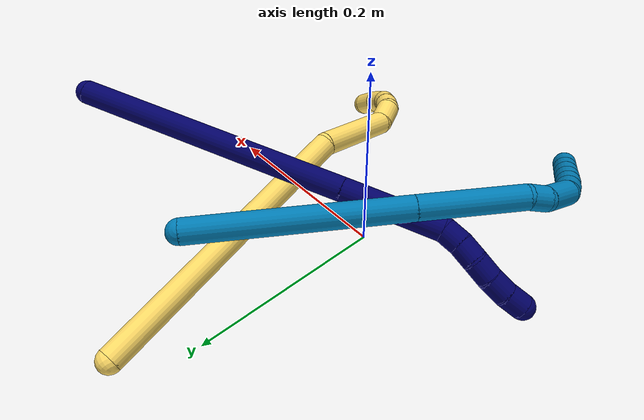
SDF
<sdf version="1.7">
 <world name="default">
  <model name="5">
   <static>0</static>
   <link name="5">
    <collision name="collision-cylinder-e_1_1_4">
     <pose>0.003242 -0.136029 0.056497 1.17714 0.022007 0.01469</pose>
     <geometry><cylinder><radius>0.0125</radius><length>0.294662</length></cylinder></geometry>
     <surface>
      <friction><ode><mu>1.16</mu><mu2>1.16</mu2><slip1>0</slip1><slip2>0</slip2></ode></friction>
      <contact><ode><kp>1e+06</kp><kd>1</kd><max_vel>0</max_vel><min_depth>0.001</min_depth></ode></contact>
     </surface>
    </collision>
    <visual name="visual-cylinder-e_1_1_4">
     <pose>0.003242 -0.136029 0.056497 1.17714 0.022007 0.01469</pose>
     <geometry><cylinder><radius>0.0125</radius><length>0.294662</length></cylinder></geometry>
     <material><ambient>1 0.858824 0.4 1</ambient></material>
    </visual>
    <collision name="collision-cylinder-e_2_4_5">
     <pose>0.022833 -0.311739 0.121716 1.35446 0.382576 0.308953</pose>
     <geometry><cylinder><radius>0.0125</radius><length>0.087588</length></cylinder></geometry>
     <surface>
      <friction><ode><mu>1.16</mu><mu2>1.16</mu2><slip1>0</slip1><slip2>0</slip2></ode></friction>
      <contact><ode><kp>1e+06</kp><kd>1</kd><max_vel>0</max_vel><min_depth>0.001</min_depth></ode></contact>
     </surface>
    </collision>
    <visual name="visual-cylinder-e_2_4_5">
     <pose>0.022833 -0.311739 0.121716 1.35446 0.382576 0.308953</pose>
     <geometry><cylinder><radius>0.0125</radius><length>0.087588</length></cylinder></geometry>
     <material><ambient>1 0.858824 0.4 1</ambient></material>
    </visual>
    <collision name="collision-cylinder-e_3_5_6">
     <pose>0.042066 -0.361591 0.139142 0.862842 0.212204 0.097976</pose>
     <geometry><cylinder><radius>0.0125</radius><length>0.02739</length></cylinder></geometry>
     <surface>
      <friction><ode><mu>1.16</mu><mu2>1.16</mu2><slip1>0</slip1><slip2>0</slip2></ode></friction>
      <contact><ode><kp>1e+06</kp><kd>1</kd><max_vel>0</max_vel><min_depth>0.001</min_depth></ode></contact>
     </surface>
    </collision>
    <visual name="visual-cylinder-e_3_5_6">
     <pose>0.042066 -0.361591 0.139142 0.862842 0.212204 0.097976</pose>
     <geometry><cylinder><radius>0.0125</radius><length>0.02739</length></cylinder></geometry>
     <material><ambient>1 0.858824 0.4 1</ambient></material>
    </visual>
    <collision name="collision-cylinder-e_4_6_7">
     <pose>0.050734 -0.375693 0.15559 0.469907 0.587633 0.144604</pose>
     <geometry><cylinder><radius>0.0125</radius><length>0.020865</length></cylinder></geometry>
     <surface>
      <friction><ode><mu>1.16</mu><mu2>1.16</mu2><slip1>0</slip1><slip2>0</slip2></ode></friction>
      <contact><ode><kp>1e+06</kp><kd>1</kd><max_vel>0</max_vel><min_depth>0.001</min_depth></ode></contact>
     </surface>
    </collision>
    <visual name="visual-cylinder-e_4_6_7">
     <pose>0.050734 -0.375693 0.15559 0.469907 0.587633 0.144604</pose>
     <geometry><cylinder><radius>0.0125</radius><length>0.020865</length></cylinder></geometry>
     <material><ambient>1 0.858824 0.4 1</ambient></material>
    </visual>
    <collision name="collision-cylinder-e_5_7_8">
     <pose>0.063814 -0.383076 0.171138 0.416234 0.70726 0.155595</pose>
     <geometry><cylinder><radius>0.0125</radius><length>0.022457</length></cylinder></geometry>
     <surface>
      <friction><ode><mu>1.16</mu><mu2>1.16</mu2><slip1>0</slip1><slip2>0</slip2></ode></friction>
      <contact><ode><kp>1e+06</kp><kd>1</kd><max_vel>0</max_vel><min_depth>0.001</min_depth></ode></contact>
     </surface>
    </collision>
    <visual name="visual-cylinder-e_5_7_8">
     <pose>0.063814 -0.383076 0.171138 0.416234 0.70726 0.155595</pose>
     <geometry><cylinder><radius>0.0125</radius><length>0.022457</length></cylinder></geometry>
     <material><ambient>1 0.858824 0.4 1</ambient></material>
    </visual>
    <collision name="collision-cylinder-e_6_8_9">
     <pose>0.079107 -0.385395 0.187669 -0.12896 0.737763 -0.049912</pose>
     <geometry><cylinder><radius>0.0125</radius><length>0.023778</length></cylinder></geometry>
     <surface>
      <friction><ode><mu>1.16</mu><mu2>1.16</mu2><slip1>0</slip1><slip2>0</slip2></ode></friction>
      <contact><ode><kp>1e+06</kp><kd>1</kd><max_vel>0</max_vel><min_depth>0.001</min_depth></ode></contact>
     </surface>
    </collision>
    <visual name="visual-cylinder-e_6_8_9">
     <pose>0.079107 -0.385395 0.187669 -0.12896 0.737763 -0.049912</pose>
     <geometry><cylinder><radius>0.0125</radius><length>0.023778</length></cylinder></geometry>
     <material><ambient>1 0.858824 0.4 1</ambient></material>
    </visual>
    <collision name="collision-cylinder-e_7_9_2">
     <pose>0.095212 -0.380977 0.204055 -0.405233 0.771488 -0.166465</pose>
     <geometry><cylinder><radius>0.0125</radius><length>0.02326</length></cylinder></geometry>
     <surface>
      <friction><ode><mu>1.16</mu><mu2>1.16</mu2><slip1>0</slip1><slip2>0</slip2></ode></friction>
      <contact><ode><kp>1e+06</kp><kd>1</kd><max_vel>0</max_vel><min_depth>0.001</min_depth></ode></contact>
     </surface>
    </collision>
    <visual name="visual-cylinder-e_7_9_2">
     <pose>0.095212 -0.380977 0.204055 -0.405233 0.771488 -0.166465</pose>
     <geometry><cylinder><radius>0.0125</radius><length>0.02326</length></cylinder></geometry>
     <material><ambient>1 0.858824 0.4 1</ambient></material>
    </visual>
    <collision name="collision-sphere-2">
     <pose>0.10332 -0.37769 0.211717 0 -0 0</pose>
     <geometry><sphere><radius>0.0125</radius></sphere></geometry>
     <surface>
      <friction><ode><mu>1.16</mu><mu2>1.16</mu2><slip1>0</slip1><slip2>0</slip2></ode></friction>
      <contact><ode><kp>1e+06</kp><kd>1</kd><max_vel>0</max_vel><min_depth>0.001</min_depth></ode></contact>
     </surface>
    </collision>
    <visual name="visual-sphere-2">
     <pose>0.10332 -0.37769 0.211717 0 -0 0</pose>
     <geometry><sphere><radius>0.0125</radius></sphere></geometry>
     <material><ambient>1 0.858824 0.4 1</ambient></material>
    </visual>
    <collision name="collision-sphere-9">
     <pose>0.087104 -0.384264 0.196393 0 -0 0</pose>
     <geometry><sphere><radius>0.0125</radius></sphere></geometry>
     <surface>
      <friction><ode><mu>1.16</mu><mu2>1.16</mu2><slip1>0</slip1><slip2>0</slip2></ode></friction>
      <contact><ode><kp>1e+06</kp><kd>1</kd><max_vel>0</max_vel><min_depth>0.001</min_depth></ode></contact>
     </surface>
    </collision>
    <visual name="visual-sphere-9">
     <pose>0.087104 -0.384264 0.196393 0 -0 0</pose>
     <geometry><sphere><radius>0.0125</radius></sphere></geometry>
     <material><ambient>1 0.858824 0.4 1</ambient></material>
    </visual>
    <collision name="collision-sphere-4">
     <pose>0.006484 -0.272058 0.112995 0 -0 0</pose>
     <geometry><sphere><radius>0.0125</radius></sphere></geometry>
     <surface>
      <friction><ode><mu>1.16</mu><mu2>1.16</mu2><slip1>0</slip1><slip2>0</slip2></ode></friction>
      <contact><ode><kp>1e+06</kp><kd>1</kd><max_vel>0</max_vel><min_depth>0.001</min_depth></ode></contact>
     </surface>
    </collision>
    <visual name="visual-sphere-4">
     <pose>0.006484 -0.272058 0.112995 0 -0 0</pose>
     <geometry><sphere><radius>0.0125</radius></sphere></geometry>
     <material><ambient>1 0.858824 0.4 1</ambient></material>
    </visual>
    <collision name="collision-sphere-1">
     <geometry><sphere><radius>0.0125</radius></sphere></geometry>
     <surface>
      <friction><ode><mu>1.16</mu><mu2>1.16</mu2><slip1>0</slip1><slip2>0</slip2></ode></friction>
      <contact><ode><kp>1e+06</kp><kd>1</kd><max_vel>0</max_vel><min_depth>0.001</min_depth></ode></contact>
     </surface>
    </collision>
    <visual name="visual-sphere-1">
     <geometry><sphere><radius>0.0125</radius></sphere></geometry>
     <material><ambient>1 0.858824 0.4 1</ambient></material>
    </visual>
    <collision name="collision-sphere-8">
     <pose>0.07111 -0.386527 0.178945 0 -0 0</pose>
     <geometry><sphere><radius>0.0125</radius></sphere></geometry>
     <surface>
      <friction><ode><mu>1.16</mu><mu2>1.16</mu2><slip1>0</slip1><slip2>0</slip2></ode></friction>
      <contact><ode><kp>1e+06</kp><kd>1</kd><max_vel>0</max_vel><min_depth>0.001</min_depth></ode></contact>
     </surface>
    </collision>
    <visual name="visual-sphere-8">
     <pose>0.07111 -0.386527 0.178945 0 -0 0</pose>
     <geometry><sphere><radius>0.0125</radius></sphere></geometry>
     <material><ambient>1 0.858824 0.4 1</ambient></material>
    </visual>
    <collision name="collision-sphere-5">
     <pose>0.039182 -0.35142 0.130436 0 -0 0</pose>
     <geometry><sphere><radius>0.0125</radius></sphere></geometry>
     <surface>
      <friction><ode><mu>1.16</mu><mu2>1.16</mu2><slip1>0</slip1><slip2>0</slip2></ode></friction>
      <contact><ode><kp>1e+06</kp><kd>1</kd><max_vel>0</max_vel><min_depth>0.001</min_depth></ode></contact>
     </surface>
    </collision>
    <visual name="visual-sphere-5">
     <pose>0.039182 -0.35142 0.130436 0 -0 0</pose>
     <geometry><sphere><radius>0.0125</radius></sphere></geometry>
     <material><ambient>1 0.858824 0.4 1</ambient></material>
    </visual>
    <collision name="collision-sphere-6">
     <pose>0.04495 -0.371761 0.147848 0 -0 0</pose>
     <geometry><sphere><radius>0.0125</radius></sphere></geometry>
     <surface>
      <friction><ode><mu>1.16</mu><mu2>1.16</mu2><slip1>0</slip1><slip2>0</slip2></ode></friction>
      <contact><ode><kp>1e+06</kp><kd>1</kd><max_vel>0</max_vel><min_depth>0.001</min_depth></ode></contact>
     </surface>
    </collision>
    <visual name="visual-sphere-6">
     <pose>0.04495 -0.371761 0.147848 0 -0 0</pose>
     <geometry><sphere><radius>0.0125</radius></sphere></geometry>
     <material><ambient>1 0.858824 0.4 1</ambient></material>
    </visual>
    <collision name="collision-sphere-7">
     <pose>0.056518 -0.379625 0.163331 0 -0 0</pose>
     <geometry><sphere><radius>0.0125</radius></sphere></geometry>
     <surface>
      <friction><ode><mu>1.16</mu><mu2>1.16</mu2><slip1>0</slip1><slip2>0</slip2></ode></friction>
      <contact><ode><kp>1e+06</kp><kd>1</kd><max_vel>0</max_vel><min_depth>0.001</min_depth></ode></contact>
     </surface>
    </collision>
    <visual name="visual-sphere-7">
     <pose>0.056518 -0.379625 0.163331 0 -0 0</pose>
     <geometry><sphere><radius>0.0125</radius></sphere></geometry>
     <material><ambient>1 0.858824 0.4 1</ambient></material>
    </visual>
    <inertial>
     <pose>0.021389 -0.223517 0.094836 0 -0 0</pose>
     <mass>0.5</mass>
     <inertia>
      <ixx>0.00226</ixx>
      <ixy>0</ixy>
      <ixz>0</ixz>
      <iyy>0.000869</iyy>
      <iyz>0</iyz>
      <izz>0.001977</izz>
     </inertia>
    </inertial>
   </link>
   <pose>0.032457 0.269206 0.01149 -0.648333 1.31608 -0.870863</pose>
  </model>
  <model name="7">
   <static>0</static>
   <link name="7">
    <collision name="collision-cylinder-e_1_1_4">
     <pose>-0.118914 -0.064873 -0.059321 2.31152 -0.934216 -1.70541</pose>
     <geometry><cylinder><radius>0.0125</radius><length>0.295756</length></cylinder></geometry>
     <surface>
      <friction><ode><mu>1.16</mu><mu2>1.16</mu2><slip1>0</slip1><slip2>0</slip2></ode></friction>
      <contact><ode><kp>1e+06</kp><kd>1</kd><max_vel>0</max_vel><min_depth>0.001</min_depth></ode></contact>
     </surface>
    </collision>
    <visual name="visual-cylinder-e_1_1_4">
     <pose>-0.118914 -0.064873 -0.059321 2.31152 -0.934216 -1.70541</pose>
     <geometry><cylinder><radius>0.0125</radius><length>0.295756</length></cylinder></geometry>
     <material><ambient>0.003922 0 0.403922 1</ambient></material>
    </visual>
    <collision name="collision-cylinder-e_2_4_5">
     <pose>-0.279499 -0.151109 -0.139542 2.34524 -0.948629 -1.76877</pose>
     <geometry><cylinder><radius>0.0125</radius><length>0.102562</length></cylinder></geometry>
     <surface>
      <friction><ode><mu>1.16</mu><mu2>1.16</mu2><slip1>0</slip1><slip2>0</slip2></ode></friction>
      <contact><ode><kp>1e+06</kp><kd>1</kd><max_vel>0</max_vel><min_depth>0.001</min_depth></ode></contact>
     </surface>
    </collision>
    <visual name="visual-cylinder-e_2_4_5">
     <pose>-0.279499 -0.151109 -0.139542 2.34524 -0.948629 -1.76877</pose>
     <geometry><cylinder><radius>0.0125</radius><length>0.102562</length></cylinder></geometry>
     <material><ambient>0.003922 0 0.403922 1</ambient></material>
    </visual>
    <collision name="collision-cylinder-e_3_5_6">
     <pose>-0.330724 -0.175266 -0.161765 2.01326 -1.25789 -1.70986</pose>
     <geometry><cylinder><radius>0.0125</radius><length>0.020081</length></cylinder></geometry>
     <surface>
      <friction><ode><mu>1.16</mu><mu2>1.16</mu2><slip1>0</slip1><slip2>0</slip2></ode></friction>
      <contact><ode><kp>1e+06</kp><kd>1</kd><max_vel>0</max_vel><min_depth>0.001</min_depth></ode></contact>
     </surface>
    </collision>
    <visual name="visual-cylinder-e_3_5_6">
     <pose>-0.330724 -0.175266 -0.161765 2.01326 -1.25789 -1.70986</pose>
     <geometry><cylinder><radius>0.0125</radius><length>0.020081</length></cylinder></geometry>
     <material><ambient>0.003922 0 0.403922 1</ambient></material>
    </visual>
    <collision name="collision-cylinder-e_4_6_7">
     <pose>-0.350134 -0.180532 -0.162753 1.43576 -1.32274 -1.19395</pose>
     <geometry><cylinder><radius>0.0125</radius><length>0.020336</length></cylinder></geometry>
     <surface>
      <friction><ode><mu>1.16</mu><mu2>1.16</mu2><slip1>0</slip1><slip2>0</slip2></ode></friction>
      <contact><ode><kp>1e+06</kp><kd>1</kd><max_vel>0</max_vel><min_depth>0.001</min_depth></ode></contact>
     </surface>
    </collision>
    <visual name="visual-cylinder-e_4_6_7">
     <pose>-0.350134 -0.180532 -0.162753 1.43576 -1.32274 -1.19395</pose>
     <geometry><cylinder><radius>0.0125</radius><length>0.020336</length></cylinder></geometry>
     <material><ambient>0.003922 0 0.403922 1</ambient></material>
    </visual>
    <collision name="collision-cylinder-e_5_7_8">
     <pose>-0.369974 -0.183609 -0.163152 2.45474 -1.47582 -2.3922</pose>
     <geometry><cylinder><radius>0.0125</radius><length>0.020056</length></cylinder></geometry>
     <surface>
      <friction><ode><mu>1.16</mu><mu2>1.16</mu2><slip1>0</slip1><slip2>0</slip2></ode></friction>
      <contact><ode><kp>1e+06</kp><kd>1</kd><max_vel>0</max_vel><min_depth>0.001</min_depth></ode></contact>
     </surface>
    </collision>
    <visual name="visual-cylinder-e_5_7_8">
     <pose>-0.369974 -0.183609 -0.163152 2.45474 -1.47582 -2.3922</pose>
     <geometry><cylinder><radius>0.0125</radius><length>0.020056</length></cylinder></geometry>
     <material><ambient>0.003922 0 0.403922 1</ambient></material>
    </visual>
    <collision name="collision-cylinder-e_6_8_9">
     <pose>-0.390312 -0.184447 -0.165951 3.0285 -1.3728 -3.00363</pose>
     <geometry><cylinder><radius>0.0125</radius><length>0.021122</length></cylinder></geometry>
     <surface>
      <friction><ode><mu>1.16</mu><mu2>1.16</mu2><slip1>0</slip1><slip2>0</slip2></ode></friction>
      <contact><ode><kp>1e+06</kp><kd>1</kd><max_vel>0</max_vel><min_depth>0.001</min_depth></ode></contact>
     </surface>
    </collision>
    <visual name="visual-cylinder-e_6_8_9">
     <pose>-0.390312 -0.184447 -0.165951 3.0285 -1.3728 -3.00363</pose>
     <geometry><cylinder><radius>0.0125</radius><length>0.021122</length></cylinder></geometry>
     <material><ambient>0.003922 0 0.403922 1</ambient></material>
    </visual>
    <collision name="collision-cylinder-e_7_9_2">
     <pose>-0.410104 -0.184925 -0.171441 3.0705 -1.22174 -3.04011</pose>
     <geometry><cylinder><radius>0.0125</radius><length>0.020086</length></cylinder></geometry>
     <surface>
      <friction><ode><mu>1.16</mu><mu2>1.16</mu2><slip1>0</slip1><slip2>0</slip2></ode></friction>
      <contact><ode><kp>1e+06</kp><kd>1</kd><max_vel>0</max_vel><min_depth>0.001</min_depth></ode></contact>
     </surface>
    </collision>
    <visual name="visual-cylinder-e_7_9_2">
     <pose>-0.410104 -0.184925 -0.171441 3.0705 -1.22174 -3.04011</pose>
     <geometry><cylinder><radius>0.0125</radius><length>0.020086</length></cylinder></geometry>
     <material><ambient>0.003922 0 0.403922 1</ambient></material>
    </visual>
    <collision name="collision-sphere-2">
     <pose>-0.419541 -0.185169 -0.174868 0 -0 0</pose>
     <geometry><sphere><radius>0.0125</radius></sphere></geometry>
     <surface>
      <friction><ode><mu>1.16</mu><mu2>1.16</mu2><slip1>0</slip1><slip2>0</slip2></ode></friction>
      <contact><ode><kp>1e+06</kp><kd>1</kd><max_vel>0</max_vel><min_depth>0.001</min_depth></ode></contact>
     </surface>
    </collision>
    <visual name="visual-sphere-2">
     <pose>-0.419541 -0.185169 -0.174868 0 -0 0</pose>
     <geometry><sphere><radius>0.0125</radius></sphere></geometry>
     <material><ambient>0.003922 0 0.403922 1</ambient></material>
    </visual>
    <collision name="collision-sphere-9">
     <pose>-0.400666 -0.184681 -0.168015 0 -0 0</pose>
     <geometry><sphere><radius>0.0125</radius></sphere></geometry>
     <surface>
      <friction><ode><mu>1.16</mu><mu2>1.16</mu2><slip1>0</slip1><slip2>0</slip2></ode></friction>
      <contact><ode><kp>1e+06</kp><kd>1</kd><max_vel>0</max_vel><min_depth>0.001</min_depth></ode></contact>
     </surface>
    </collision>
    <visual name="visual-sphere-9">
     <pose>-0.400666 -0.184681 -0.168015 0 -0 0</pose>
     <geometry><sphere><radius>0.0125</radius></sphere></geometry>
     <material><ambient>0.003922 0 0.403922 1</ambient></material>
    </visual>
    <collision name="collision-sphere-4">
     <pose>-0.237827 -0.129746 -0.118641 0 -0 0</pose>
     <geometry><sphere><radius>0.0125</radius></sphere></geometry>
     <surface>
      <friction><ode><mu>1.16</mu><mu2>1.16</mu2><slip1>0</slip1><slip2>0</slip2></ode></friction>
      <contact><ode><kp>1e+06</kp><kd>1</kd><max_vel>0</max_vel><min_depth>0.001</min_depth></ode></contact>
     </surface>
    </collision>
    <visual name="visual-sphere-4">
     <pose>-0.237827 -0.129746 -0.118641 0 -0 0</pose>
     <geometry><sphere><radius>0.0125</radius></sphere></geometry>
     <material><ambient>0.003922 0 0.403922 1</ambient></material>
    </visual>
    <collision name="collision-sphere-1">
     <geometry><sphere><radius>0.0125</radius></sphere></geometry>
     <surface>
      <friction><ode><mu>1.16</mu><mu2>1.16</mu2><slip1>0</slip1><slip2>0</slip2></ode></friction>
      <contact><ode><kp>1e+06</kp><kd>1</kd><max_vel>0</max_vel><min_depth>0.001</min_depth></ode></contact>
     </surface>
    </collision>
    <visual name="visual-sphere-1">
     <geometry><sphere><radius>0.0125</radius></sphere></geometry>
     <material><ambient>0.003922 0 0.403922 1</ambient></material>
    </visual>
    <collision name="collision-sphere-8">
     <pose>-0.379957 -0.184212 -0.163887 0 -0 0</pose>
     <geometry><sphere><radius>0.0125</radius></sphere></geometry>
     <surface>
      <friction><ode><mu>1.16</mu><mu2>1.16</mu2><slip1>0</slip1><slip2>0</slip2></ode></friction>
      <contact><ode><kp>1e+06</kp><kd>1</kd><max_vel>0</max_vel><min_depth>0.001</min_depth></ode></contact>
     </surface>
    </collision>
    <visual name="visual-sphere-8">
     <pose>-0.379957 -0.184212 -0.163887 0 -0 0</pose>
     <geometry><sphere><radius>0.0125</radius></sphere></geometry>
     <material><ambient>0.003922 0 0.403922 1</ambient></material>
    </visual>
    <collision name="collision-sphere-5">
     <pose>-0.321171 -0.172472 -0.160442 0 -0 0</pose>
     <geometry><sphere><radius>0.0125</radius></sphere></geometry>
     <surface>
      <friction><ode><mu>1.16</mu><mu2>1.16</mu2><slip1>0</slip1><slip2>0</slip2></ode></friction>
      <contact><ode><kp>1e+06</kp><kd>1</kd><max_vel>0</max_vel><min_depth>0.001</min_depth></ode></contact>
     </surface>
    </collision>
    <visual name="visual-sphere-5">
     <pose>-0.321171 -0.172472 -0.160442 0 -0 0</pose>
     <geometry><sphere><radius>0.0125</radius></sphere></geometry>
     <material><ambient>0.003922 0 0.403922 1</ambient></material>
    </visual>
    <collision name="collision-sphere-6">
     <pose>-0.340277 -0.178059 -0.163089 0 -0 0</pose>
     <geometry><sphere><radius>0.0125</radius></sphere></geometry>
     <surface>
      <friction><ode><mu>1.16</mu><mu2>1.16</mu2><slip1>0</slip1><slip2>0</slip2></ode></friction>
      <contact><ode><kp>1e+06</kp><kd>1</kd><max_vel>0</max_vel><min_depth>0.001</min_depth></ode></contact>
     </surface>
    </collision>
    <visual name="visual-sphere-6">
     <pose>-0.340277 -0.178059 -0.163089 0 -0 0</pose>
     <geometry><sphere><radius>0.0125</radius></sphere></geometry>
     <material><ambient>0.003922 0 0.403922 1</ambient></material>
    </visual>
    <collision name="collision-sphere-7">
     <pose>-0.359991 -0.183006 -0.162416 0 -0 0</pose>
     <geometry><sphere><radius>0.0125</radius></sphere></geometry>
     <surface>
      <friction><ode><mu>1.16</mu><mu2>1.16</mu2><slip1>0</slip1><slip2>0</slip2></ode></friction>
      <contact><ode><kp>1e+06</kp><kd>1</kd><max_vel>0</max_vel><min_depth>0.001</min_depth></ode></contact>
     </surface>
    </collision>
    <visual name="visual-sphere-7">
     <pose>-0.359991 -0.183006 -0.162416 0 -0 0</pose>
     <geometry><sphere><radius>0.0125</radius></sphere></geometry>
     <material><ambient>0.003922 0 0.403922 1</ambient></material>
    </visual>
    <inertial>
     <pose>-0.202998 -0.106337 -0.097271 0 -0 0</pose>
     <mass>0.5</mass>
     <inertia>
      <ixx>-0.001549</ixx>
      <ixy>0</ixy>
      <ixz>0</ixz>
      <iyy>0.000199</iyy>
      <iyz>0</iyz>
      <izz>0.002804</izz>
     </inertia>
    </inertial>
   </link>
   <pose>0.276724 0.144569 0.106821 -1.66082 -0.651671 0.060336</pose>
  </model>
  <model name="9">
   <static>0</static>
   <link name="9">
    <collision name="collision-cylinder-e_1_1_4">
     <pose>0.054253 -0.090594 0.00546 1.5106 0.538779 0.508662</pose>
     <geometry><cylinder><radius>0.0125</radius><length>0.211476</length></cylinder></geometry>
     <surface>
      <friction><ode><mu>1.16</mu><mu2>1.16</mu2><slip1>0</slip1><slip2>0</slip2></ode></friction>
      <contact><ode><kp>1e+06</kp><kd>1</kd><max_vel>0</max_vel><min_depth>0.001</min_depth></ode></contact>
     </surface>
    </collision>
    <visual name="visual-cylinder-e_1_1_4">
     <pose>0.054253 -0.090594 0.00546 1.5106 0.538779 0.508662</pose>
     <geometry><cylinder><radius>0.0125</radius><length>0.211476</length></cylinder></geometry>
     <material><ambient>0 0.490196 0.709804 1</ambient></material>
    </visual>
    <collision name="collision-cylinder-e_2_4_5">
     <pose>0.135424 -0.226077 0.012972 1.52512 0.539721 0.516695</pose>
     <geometry><cylinder><radius>0.0125</radius><length>0.104762</length></cylinder></geometry>
     <surface>
      <friction><ode><mu>1.16</mu><mu2>1.16</mu2><slip1>0</slip1><slip2>0</slip2></ode></friction>
      <contact><ode><kp>1e+06</kp><kd>1</kd><max_vel>0</max_vel><min_depth>0.001</min_depth></ode></contact>
     </surface>
    </collision>
    <visual name="visual-cylinder-e_2_4_5">
     <pose>0.135424 -0.226077 0.012972 1.52512 0.539721 0.516695</pose>
     <geometry><cylinder><radius>0.0125</radius><length>0.104762</length></cylinder></geometry>
     <material><ambient>0 0.490196 0.709804 1</ambient></material>
    </visual>
    <collision name="collision-cylinder-e_3_5_6">
     <pose>0.16629 -0.280002 0.012457 1.84758 0.397738 0.521375</pose>
     <geometry><cylinder><radius>0.0125</radius><length>0.020379</length></cylinder></geometry>
     <surface>
      <friction><ode><mu>1.16</mu><mu2>1.16</mu2><slip1>0</slip1><slip2>0</slip2></ode></friction>
      <contact><ode><kp>1e+06</kp><kd>1</kd><max_vel>0</max_vel><min_depth>0.001</min_depth></ode></contact>
     </surface>
    </collision>
    <visual name="visual-cylinder-e_3_5_6">
     <pose>0.16629 -0.280002 0.012457 1.84758 0.397738 0.521375</pose>
     <geometry><cylinder><radius>0.0125</radius><length>0.020379</length></cylinder></geometry>
     <material><ambient>0 0.490196 0.709804 1</ambient></material>
    </visual>
    <collision name="collision-cylinder-e_4_6_7">
     <pose>0.181352 -0.300386 0.000466 2.26387 0.645809 1.23863</pose>
     <geometry><cylinder><radius>0.0125</radius><length>0.036939</length></cylinder></geometry>
     <surface>
      <friction><ode><mu>1.16</mu><mu2>1.16</mu2><slip1>0</slip1><slip2>0</slip2></ode></friction>
      <contact><ode><kp>1e+06</kp><kd>1</kd><max_vel>0</max_vel><min_depth>0.001</min_depth></ode></contact>
     </surface>
    </collision>
    <visual name="visual-cylinder-e_4_6_7">
     <pose>0.181352 -0.300386 0.000466 2.26387 0.645809 1.23863</pose>
     <geometry><cylinder><radius>0.0125</radius><length>0.036939</length></cylinder></geometry>
     <material><ambient>0 0.490196 0.709804 1</ambient></material>
    </visual>
    <collision name="collision-cylinder-e_5_7_8">
     <pose>0.199596 -0.315127 -0.019327 2.82522 0.578681 2.15777</pose>
     <geometry><cylinder><radius>0.0125</radius><length>0.026067</length></cylinder></geometry>
     <surface>
      <friction><ode><mu>1.16</mu><mu2>1.16</mu2><slip1>0</slip1><slip2>0</slip2></ode></friction>
      <contact><ode><kp>1e+06</kp><kd>1</kd><max_vel>0</max_vel><min_depth>0.001</min_depth></ode></contact>
     </surface>
    </collision>
    <visual name="visual-cylinder-e_5_7_8">
     <pose>0.199596 -0.315127 -0.019327 2.82522 0.578681 2.15777</pose>
     <geometry><cylinder><radius>0.0125</radius><length>0.026067</length></cylinder></geometry>
     <material><ambient>0 0.490196 0.709804 1</ambient></material>
    </visual>
    <collision name="collision-cylinder-e_6_8_9">
     <pose>0.212589 -0.320325 -0.037738 2.92097 0.618575 2.47426</pose>
     <geometry><cylinder><radius>0.0125</radius><length>0.020227</length></cylinder></geometry>
     <surface>
      <friction><ode><mu>1.16</mu><mu2>1.16</mu2><slip1>0</slip1><slip2>0</slip2></ode></friction>
      <contact><ode><kp>1e+06</kp><kd>1</kd><max_vel>0</max_vel><min_depth>0.001</min_depth></ode></contact>
     </surface>
    </collision>
    <visual name="visual-cylinder-e_6_8_9">
     <pose>0.212589 -0.320325 -0.037738 2.92097 0.618575 2.47426</pose>
     <geometry><cylinder><radius>0.0125</radius><length>0.020227</length></cylinder></geometry>
     <material><ambient>0 0.490196 0.709804 1</ambient></material>
    </visual>
    <collision name="collision-cylinder-e_7_9_10">
     <pose>0.224174 -0.323505 -0.053885 2.97344 0.607713 2.61648</pose>
     <geometry><cylinder><radius>0.0125</radius><length>0.020034</length></cylinder></geometry>
     <surface>
      <friction><ode><mu>1.16</mu><mu2>1.16</mu2><slip1>0</slip1><slip2>0</slip2></ode></friction>
      <contact><ode><kp>1e+06</kp><kd>1</kd><max_vel>0</max_vel><min_depth>0.001</min_depth></ode></contact>
     </surface>
    </collision>
    <visual name="visual-cylinder-e_7_9_10">
     <pose>0.224174 -0.323505 -0.053885 2.97344 0.607713 2.61648</pose>
     <geometry><cylinder><radius>0.0125</radius><length>0.020034</length></cylinder></geometry>
     <material><ambient>0 0.490196 0.709804 1</ambient></material>
    </visual>
    <collision name="collision-cylinder-e_8_10_11">
     <pose>0.235732 -0.326185 -0.07005 2.98116 0.620931 2.6506</pose>
     <geometry><cylinder><radius>0.0125</radius><length>0.02007</length></cylinder></geometry>
     <surface>
      <friction><ode><mu>1.16</mu><mu2>1.16</mu2><slip1>0</slip1><slip2>0</slip2></ode></friction>
      <contact><ode><kp>1e+06</kp><kd>1</kd><max_vel>0</max_vel><min_depth>0.001</min_depth></ode></contact>
     </surface>
    </collision>
    <visual name="visual-cylinder-e_8_10_11">
     <pose>0.235732 -0.326185 -0.07005 2.98116 0.620931 2.6506</pose>
     <geometry><cylinder><radius>0.0125</radius><length>0.02007</length></cylinder></geometry>
     <material><ambient>0 0.490196 0.709804 1</ambient></material>
    </visual>
    <collision name="collision-cylinder-e_9_11_12">
     <pose>0.24736 -0.328913 -0.086154 2.96636 0.616431 2.60316</pose>
     <geometry><cylinder><radius>0.0125</radius><length>0.020031</length></cylinder></geometry>
     <surface>
      <friction><ode><mu>1.16</mu><mu2>1.16</mu2><slip1>0</slip1><slip2>0</slip2></ode></friction>
      <contact><ode><kp>1e+06</kp><kd>1</kd><max_vel>0</max_vel><min_depth>0.001</min_depth></ode></contact>
     </surface>
    </collision>
    <visual name="visual-cylinder-e_9_11_12">
     <pose>0.24736 -0.328913 -0.086154 2.96636 0.616431 2.60316</pose>
     <geometry><cylinder><radius>0.0125</radius><length>0.020031</length></cylinder></geometry>
     <material><ambient>0 0.490196 0.709804 1</ambient></material>
    </visual>
    <collision name="collision-cylinder-e_10_12_2">
     <pose>0.259082 -0.331607 -0.10216 2.98353 0.63446 2.66822</pose>
     <geometry><cylinder><radius>0.0125</radius><length>0.020014</length></cylinder></geometry>
     <surface>
      <friction><ode><mu>1.16</mu><mu2>1.16</mu2><slip1>0</slip1><slip2>0</slip2></ode></friction>
      <contact><ode><kp>1e+06</kp><kd>1</kd><max_vel>0</max_vel><min_depth>0.001</min_depth></ode></contact>
     </surface>
    </collision>
    <visual name="visual-cylinder-e_10_12_2">
     <pose>0.259082 -0.331607 -0.10216 2.98353 0.63446 2.66822</pose>
     <geometry><cylinder><radius>0.0125</radius><length>0.020014</length></cylinder></geometry>
     <material><ambient>0 0.490196 0.709804 1</ambient></material>
    </visual>
    <collision name="collision-sphere-2">
     <pose>0.265013 -0.332875 -0.110119 0 -0 0</pose>
     <geometry><sphere><radius>0.0125</radius></sphere></geometry>
     <surface>
      <friction><ode><mu>1.16</mu><mu2>1.16</mu2><slip1>0</slip1><slip2>0</slip2></ode></friction>
      <contact><ode><kp>1e+06</kp><kd>1</kd><max_vel>0</max_vel><min_depth>0.001</min_depth></ode></contact>
     </surface>
    </collision>
    <visual name="visual-sphere-2">
     <pose>0.265013 -0.332875 -0.110119 0 -0 0</pose>
     <geometry><sphere><radius>0.0125</radius></sphere></geometry>
     <material><ambient>0 0.490196 0.709804 1</ambient></material>
    </visual>
    <collision name="collision-sphere-12">
     <pose>0.25315 -0.330338 -0.094201 0 -0 0</pose>
     <geometry><sphere><radius>0.0125</radius></sphere></geometry>
     <surface>
      <friction><ode><mu>1.16</mu><mu2>1.16</mu2><slip1>0</slip1><slip2>0</slip2></ode></friction>
      <contact><ode><kp>1e+06</kp><kd>1</kd><max_vel>0</max_vel><min_depth>0.001</min_depth></ode></contact>
     </surface>
    </collision>
    <visual name="visual-sphere-12">
     <pose>0.25315 -0.330338 -0.094201 0 -0 0</pose>
     <geometry><sphere><radius>0.0125</radius></sphere></geometry>
     <material><ambient>0 0.490196 0.709804 1</ambient></material>
    </visual>
    <collision name="collision-sphere-11">
     <pose>0.24157 -0.327489 -0.078107 0 -0 0</pose>
     <geometry><sphere><radius>0.0125</radius></sphere></geometry>
     <surface>
      <friction><ode><mu>1.16</mu><mu2>1.16</mu2><slip1>0</slip1><slip2>0</slip2></ode></friction>
      <contact><ode><kp>1e+06</kp><kd>1</kd><max_vel>0</max_vel><min_depth>0.001</min_depth></ode></contact>
     </surface>
    </collision>
    <visual name="visual-sphere-11">
     <pose>0.24157 -0.327489 -0.078107 0 -0 0</pose>
     <geometry><sphere><radius>0.0125</radius></sphere></geometry>
     <material><ambient>0 0.490196 0.709804 1</ambient></material>
    </visual>
    <collision name="collision-sphere-10">
     <pose>0.229893 -0.324881 -0.061993 0 -0 0</pose>
     <geometry><sphere><radius>0.0125</radius></sphere></geometry>
     <surface>
      <friction><ode><mu>1.16</mu><mu2>1.16</mu2><slip1>0</slip1><slip2>0</slip2></ode></friction>
      <contact><ode><kp>1e+06</kp><kd>1</kd><max_vel>0</max_vel><min_depth>0.001</min_depth></ode></contact>
     </surface>
    </collision>
    <visual name="visual-sphere-10">
     <pose>0.229893 -0.324881 -0.061993 0 -0 0</pose>
     <geometry><sphere><radius>0.0125</radius></sphere></geometry>
     <material><ambient>0 0.490196 0.709804 1</ambient></material>
    </visual>
    <collision name="collision-sphere-9">
     <pose>0.218454 -0.322128 -0.045778 0 -0 0</pose>
     <geometry><sphere><radius>0.0125</radius></sphere></geometry>
     <surface>
      <friction><ode><mu>1.16</mu><mu2>1.16</mu2><slip1>0</slip1><slip2>0</slip2></ode></friction>
      <contact><ode><kp>1e+06</kp><kd>1</kd><max_vel>0</max_vel><min_depth>0.001</min_depth></ode></contact>
     </surface>
    </collision>
    <visual name="visual-sphere-9">
     <pose>0.218454 -0.322128 -0.045778 0 -0 0</pose>
     <geometry><sphere><radius>0.0125</radius></sphere></geometry>
     <material><ambient>0 0.490196 0.709804 1</ambient></material>
    </visual>
    <collision name="collision-sphere-4">
     <pose>0.108506 -0.181189 0.010921 0 -0 0</pose>
     <geometry><sphere><radius>0.0125</radius></sphere></geometry>
     <surface>
      <friction><ode><mu>1.16</mu><mu2>1.16</mu2><slip1>0</slip1><slip2>0</slip2></ode></friction>
      <contact><ode><kp>1e+06</kp><kd>1</kd><max_vel>0</max_vel><min_depth>0.001</min_depth></ode></contact>
     </surface>
    </collision>
    <visual name="visual-sphere-4">
     <pose>0.108506 -0.181189 0.010921 0 -0 0</pose>
     <geometry><sphere><radius>0.0125</radius></sphere></geometry>
     <material><ambient>0 0.490196 0.709804 1</ambient></material>
    </visual>
    <collision name="collision-sphere-1">
     <geometry><sphere><radius>0.0125</radius></sphere></geometry>
     <surface>
      <friction><ode><mu>1.16</mu><mu2>1.16</mu2><slip1>0</slip1><slip2>0</slip2></ode></friction>
      <contact><ode><kp>1e+06</kp><kd>1</kd><max_vel>0</max_vel><min_depth>0.001</min_depth></ode></contact>
     </surface>
    </collision>
    <visual name="visual-sphere-1">
     <geometry><sphere><radius>0.0125</radius></sphere></geometry>
     <material><ambient>0 0.490196 0.709804 1</ambient></material>
    </visual>
    <collision name="collision-sphere-8">
     <pose>0.206725 -0.318522 -0.029698 0 -0 0</pose>
     <geometry><sphere><radius>0.0125</radius></sphere></geometry>
     <surface>
      <friction><ode><mu>1.16</mu><mu2>1.16</mu2><slip1>0</slip1><slip2>0</slip2></ode></friction>
      <contact><ode><kp>1e+06</kp><kd>1</kd><max_vel>0</max_vel><min_depth>0.001</min_depth></ode></contact>
     </surface>
    </collision>
    <visual name="visual-sphere-8">
     <pose>0.206725 -0.318522 -0.029698 0 -0 0</pose>
     <geometry><sphere><radius>0.0125</radius></sphere></geometry>
     <material><ambient>0 0.490196 0.709804 1</ambient></material>
    </visual>
    <collision name="collision-sphere-5">
     <pose>0.162343 -0.270965 0.015024 0 -0 0</pose>
     <geometry><sphere><radius>0.0125</radius></sphere></geometry>
     <surface>
      <friction><ode><mu>1.16</mu><mu2>1.16</mu2><slip1>0</slip1><slip2>0</slip2></ode></friction>
      <contact><ode><kp>1e+06</kp><kd>1</kd><max_vel>0</max_vel><min_depth>0.001</min_depth></ode></contact>
     </surface>
    </collision>
    <visual name="visual-sphere-5">
     <pose>0.162343 -0.270965 0.015024 0 -0 0</pose>
     <geometry><sphere><radius>0.0125</radius></sphere></geometry>
     <material><ambient>0 0.490196 0.709804 1</ambient></material>
    </visual>
    <collision name="collision-sphere-6">
     <pose>0.170236 -0.289039 0.00989 0 -0 0</pose>
     <geometry><sphere><radius>0.0125</radius></sphere></geometry>
     <surface>
      <friction><ode><mu>1.16</mu><mu2>1.16</mu2><slip1>0</slip1><slip2>0</slip2></ode></friction>
      <contact><ode><kp>1e+06</kp><kd>1</kd><max_vel>0</max_vel><min_depth>0.001</min_depth></ode></contact>
     </surface>
    </collision>
    <visual name="visual-sphere-6">
     <pose>0.170236 -0.289039 0.00989 0 -0 0</pose>
     <geometry><sphere><radius>0.0125</radius></sphere></geometry>
     <material><ambient>0 0.490196 0.709804 1</ambient></material>
    </visual>
    <collision name="collision-sphere-7">
     <pose>0.192468 -0.311733 -0.008957 0 -0 0</pose>
     <geometry><sphere><radius>0.0125</radius></sphere></geometry>
     <surface>
      <friction><ode><mu>1.16</mu><mu2>1.16</mu2><slip1>0</slip1><slip2>0</slip2></ode></friction>
      <contact><ode><kp>1e+06</kp><kd>1</kd><max_vel>0</max_vel><min_depth>0.001</min_depth></ode></contact>
     </surface>
    </collision>
    <visual name="visual-sphere-7">
     <pose>0.192468 -0.311733 -0.008957 0 -0 0</pose>
     <geometry><sphere><radius>0.0125</radius></sphere></geometry>
     <material><ambient>0 0.490196 0.709804 1</ambient></material>
    </visual>
    <inertial>
     <pose>0.129227 -0.201183 -0.009476 0 -0 0</pose>
     <mass>0.5</mass>
     <inertia>
      <ixx>0.001074</ixx>
      <ixy>0</ixy>
      <ixz>0</ixz>
      <iyy>0.000638</iyy>
      <iyz>0</iyz>
      <izz>0.000296</izz>
     </inertia>
    </inertial>
   </link>
   <pose>0.058105 0.172069 0.08219 0.375127 -0.511075 -1.22259</pose>
  </model>
 </world>
</sdf>
